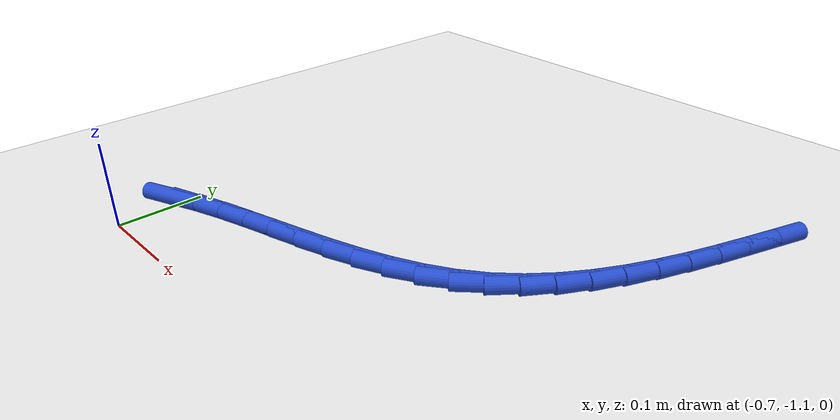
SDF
<sdf version="1.6">
 <world name="default">
  <model name="ground_plane">
   <static>1</static>
   <link name="link">
    <collision name="collision">
     <geometry><plane><normal>0 0 1</normal><size>100 100</size></plane></geometry>
     <surface><friction><ode><mu>100</mu><mu2>50</mu2></ode></friction></surface>
    </collision>
    <visual name="visual">
     <cast_shadows>0</cast_shadows>
     <geometry><plane><normal>0 0 1</normal><size>100 100</size></plane></geometry>
     <material>
      <script><uri>file://media/materials/scripts/gazebo.material</uri><name>Gazebo/WhiteGlow</name></script>
     </material>
    </visual>
   </link>
  </model>
  <model name="line">
   <link name="link_202">
    <pose>-0.7028004256145585 -1.0301525523343624 0.01 0 1.57 0.3671938539150818</pose>
    <collision name="collision">
     <geometry><cylinder><radius>0.01</radius><length>0.08</length></cylinder></geometry>
    </collision>
    <visual name="visual">
     <material>
      <script><name>Gazebo/Blue</name><uri>file://media/materials/scripts/gazebo.material</uri></script>
     </material>
     <geometry><cylinder><radius>0.01</radius><length>0.08</length></cylinder></geometry>
    </visual>
   </link>
   <link name="link_203">
    <pose>-0.6689683660787703 -1.0171394442211483 0.01 0 1.57 0.31243048665305906</pose>
    <collision name="collision">
     <geometry><cylinder><radius>0.01</radius><length>0.08</length></cylinder></geometry>
    </collision>
    <visual name="visual">
     <material>
      <script><name>Gazebo/Blue</name><uri>file://media/materials/scripts/gazebo.material</uri></script>
     </material>
     <geometry><cylinder><radius>0.01</radius><length>0.08</length></cylinder></geometry>
    </visual>
   </link>
   <link name="link_204">
    <pose>-0.6335023693636875 -1.0056835911852027 0.01 0 1.57 0.27684648155515945</pose>
    <collision name="collision">
     <geometry><cylinder><radius>0.01</radius><length>0.08</length></cylinder></geometry>
    </collision>
    <visual name="visual">
     <material>
      <script><name>Gazebo/Blue</name><uri>file://media/materials/scripts/gazebo.material</uri></script>
     </material>
     <geometry><cylinder><radius>0.01</radius><length>0.08</length></cylinder></geometry>
    </visual>
   </link>
   <link name="link_205">
    <pose>-0.596907516674856 -0.9952854150992941 0.01 0 1.57 0.25847176202142924</pose>
    <collision name="collision">
     <geometry><cylinder><radius>0.01</radius><length>0.08</length></cylinder></geometry>
    </collision>
    <visual name="visual">
     <material>
      <script><name>Gazebo/Blue</name><uri>file://media/materials/scripts/gazebo.material</uri></script>
     </material>
     <geometry><cylinder><radius>0.01</radius><length>0.08</length></cylinder></geometry>
    </visual>
   </link>
   <link name="link_206">
    <pose>-0.5596888892178215 -0.9854453378361903 0.01 0 1.57 0.256219915233724</pose>
    <collision name="collision">
     <geometry><cylinder><radius>0.01</radius><length>0.08</length></cylinder></geometry>
    </collision>
    <visual name="visual">
     <material>
      <script><name>Gazebo/Blue</name><uri>file://media/materials/scripts/gazebo.material</uri></script>
     </material>
     <geometry><cylinder><radius>0.01</radius><length>0.08</length></cylinder></geometry>
    </visual>
   </link>
   <link name="link_207">
    <pose>-0.5223515681981298 -0.9756637812686589 0.01 0 1.57 0.2699030309480601</pose>
    <collision name="collision">
     <geometry><cylinder><radius>0.01</radius><length>0.08</length></cylinder></geometry>
    </collision>
    <visual name="visual">
     <material>
      <script><name>Gazebo/Blue</name><uri>file://media/materials/scripts/gazebo.material</uri></script>
     </material>
     <geometry><cylinder><radius>0.01</radius><length>0.08</length></cylinder></geometry>
    </visual>
   </link>
   <link name="link_208">
    <pose>-0.4854006348213255 -0.9654411672694687 0.01 0 1.57 0.300221448955756</pose>
    <collision name="collision">
     <geometry><cylinder><radius>0.01</radius><length>0.08</length></cylinder></geometry>
    </collision>
    <visual name="visual">
     <material>
      <script><name>Gazebo/Blue</name><uri>file://media/materials/scripts/gazebo.material</uri></script>
     </material>
     <geometry><cylinder><radius>0.01</radius><length>0.08</length></cylinder></geometry>
    </visual>
   </link>
   <link name="link_209">
    <pose>-0.4493411702929565 -0.9542779177113877 0.01 0 1.57 0.34873958818993245</pose>
    <collision name="collision">
     <geometry><cylinder><radius>0.01</radius><length>0.08</length></cylinder></geometry>
    </collision>
    <visual name="visual">
     <material>
      <script><name>Gazebo/Blue</name><uri>file://media/materials/scripts/gazebo.material</uri></script>
     </material>
     <geometry><cylinder><radius>0.01</radius><length>0.08</length></cylinder></geometry>
    </visual>
   </link>
   <link name="link_210">
    <pose>-0.41467825581856765 -0.9416744544671842 0.01 0 1.57 0.41778289477575675</pose>
    <collision name="collision">
     <geometry><cylinder><radius>0.01</radius><length>0.08</length></cylinder></geometry>
    </collision>
    <visual name="visual">
     <material>
      <script><name>Gazebo/Blue</name><uri>file://media/materials/scripts/gazebo.material</uri></script>
     </material>
     <geometry><cylinder><radius>0.01</radius><length>0.08</length></cylinder></geometry>
    </visual>
   </link>
   <link name="link_211">
    <pose>-0.3819169726037045 -0.9271311994096264 0.01 0 1.57 0.5100886057611141</pose>
    <collision name="collision">
     <geometry><cylinder><radius>0.01</radius><length>0.08</length></cylinder></geometry>
    </collision>
    <visual name="visual">
     <material>
      <script><name>Gazebo/Blue</name><uri>file://media/materials/scripts/gazebo.material</uri></script>
     </material>
     <geometry><cylinder><radius>0.01</radius><length>0.08</length></cylinder></geometry>
    </visual>
   </link>
   <link name="link_212">
    <pose>-0.3515624018539131 -0.910148574411482 0.01 0 1.57 0.6273585674848354</pose>
    <collision name="collision">
     <geometry><cylinder><radius>0.01</radius><length>0.08</length></cylinder></geometry>
    </collision>
    <visual name="visual">
     <material>
      <script><name>Gazebo/Blue</name><uri>file://media/materials/scripts/gazebo.material</uri></script>
     </material>
     <geometry><cylinder><radius>0.01</radius><length>0.08</length></cylinder></geometry>
    </visual>
   </link>
   <link name="link_213">
    <pose>-0.324105992517207 -0.8902405674392478 0.01 0 1.57 0.7536819214258206</pose>
    <collision name="collision">
     <geometry><cylinder><radius>0.01</radius><length>0.08</length></cylinder></geometry>
    </collision>
    <visual name="visual">
     <material>
      <script><name>Gazebo/Blue</name><uri>file://media/materials/scripts/gazebo.material</uri></script>
     </material>
     <geometry><cylinder><radius>0.01</radius><length>0.08</length></cylinder></geometry>
    </visual>
   </link>
   <link name="link_214">
    <pose>-0.2996602355695748 -0.8672982851689092 0.01 0 1.57 0.8680242156099021</pose>
    <collision name="collision">
     <geometry><cylinder><radius>0.01</radius><length>0.08</length></cylinder></geometry>
    </collision>
    <visual name="visual">
     <material>
      <script><name>Gazebo/Blue</name><uri>file://media/materials/scripts/gazebo.material</uri></script>
     </material>
     <geometry><cylinder><radius>0.01</radius><length>0.08</length></cylinder></geometry>
    </visual>
   </link>
   <link name="link_215">
    <pose>-0.27791830994744443 -0.8416301111960676 0.01 0 1.57 0.9667543546289269</pose>
    <collision name="collision">
     <geometry><cylinder><radius>0.01</radius><length>0.08</length></cylinder></geometry>
    </collision>
    <visual name="visual">
     <material>
      <script><name>Gazebo/Blue</name><uri>file://media/materials/scripts/gazebo.material</uri></script>
     </material>
     <geometry><cylinder><radius>0.01</radius><length>0.08</length></cylinder></geometry>
    </visual>
   </link>
   <link name="link_216">
    <pose>-0.2585516656012482 -0.8135660526412634 0.01 0 1.57 1.0490817831455297</pose>
    <collision name="collision">
     <geometry><cylinder><radius>0.01</radius><length>0.08</length></cylinder></geometry>
    </collision>
    <visual name="visual">
     <material>
      <script><name>Gazebo/Blue</name><uri>file://media/materials/scripts/gazebo.material</uri></script>
     </material>
     <geometry><cylinder><radius>0.01</radius><length>0.08</length></cylinder></geometry>
    </visual>
   </link>
   <link name="link_217">
    <pose>-0.24123175248141676 -0.7834361166250337 0.01 0 1.57 1.1154973773065011</pose>
    <collision name="collision">
     <geometry><cylinder><radius>0.01</radius><length>0.08</length></cylinder></geometry>
    </collision>
    <visual name="visual">
     <material>
      <script><name>Gazebo/Blue</name><uri>file://media/materials/scripts/gazebo.material</uri></script>
     </material>
     <geometry><cylinder><radius>0.01</radius><length>0.08</length></cylinder></geometry>
    </visual>
   </link>
   <link name="link_218">
    <pose>-0.22563002053838122 -0.7515703102679179 0.01 0 1.57 1.167103296674528</pose>
    <collision name="collision">
     <geometry><cylinder><radius>0.01</radius><length>0.08</length></cylinder></geometry>
    </collision>
    <visual name="visual">
     <material>
      <script><name>Gazebo/Blue</name><uri>file://media/materials/scripts/gazebo.material</uri></script>
     </material>
     <geometry><cylinder><radius>0.01</radius><length>0.08</length></cylinder></geometry>
    </visual>
   </link>
   <link name="link_219">
    <pose>-0.21141791972257273 -0.7182986406904545 0.01 0 1.57 1.2051341309170498</pose>
    <collision name="collision">
     <geometry><cylinder><radius>0.01</radius><length>0.08</length></cylinder></geometry>
    </collision>
    <visual name="visual">
     <material>
      <script><name>Gazebo/Blue</name><uri>file://media/materials/scripts/gazebo.material</uri></script>
     </material>
     <geometry><cylinder><radius>0.01</radius><length>0.08</length></cylinder></geometry>
    </visual>
   </link>
   <link name="link_220">
    <pose>-0.19826689998442254 -0.6839511150131816 0.01 0 1.57 1.2306781104808666</pose>
    <collision name="collision">
     <geometry><cylinder><radius>0.01</radius><length>0.08</length></cylinder></geometry>
    </collision>
    <visual name="visual">
     <material>
      <script><name>Gazebo/Blue</name><uri>file://media/materials/scripts/gazebo.material</uri></script>
     </material>
     <geometry><cylinder><radius>0.01</radius><length>0.08</length></cylinder></geometry>
    </visual>
   </link>
   <link name="link_221">
    <pose>-0.18584841127436175 -0.6488577403566381 0.01 0 1.57 1.2445384893070885</pose>
    <collision name="collision">
     <geometry><cylinder><radius>0.01</radius><length>0.08</length></cylinder></geometry>
    </collision>
    <visual name="visual">
     <material>
      <script><name>Gazebo/Blue</name><uri>file://media/materials/scripts/gazebo.material</uri></script>
     </material>
     <geometry><cylinder><radius>0.01</radius><length>0.08</length></cylinder></geometry>
    </visual>
   </link>
   <link name="link_222">
    <pose>-0.17383390354282158 -0.6133485238413628 0.01 0 1.57 1.2471743861287532</pose>
    <collision name="collision">
     <geometry><cylinder><radius>0.01</radius><length>0.08</length></cylinder></geometry>
    </collision>
    <visual name="visual">
     <material>
      <script><name>Gazebo/Blue</name><uri>file://media/materials/scripts/gazebo.material</uri></script>
     </material>
     <geometry><cylinder><radius>0.01</radius><length>0.08</length></cylinder></geometry>
    </visual>
   </link>
  </model>
 </world>
</sdf>
